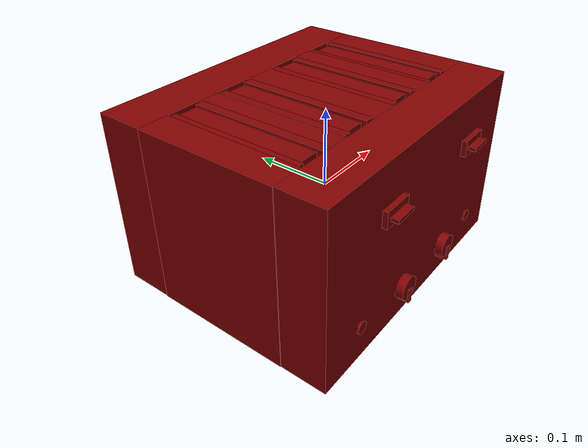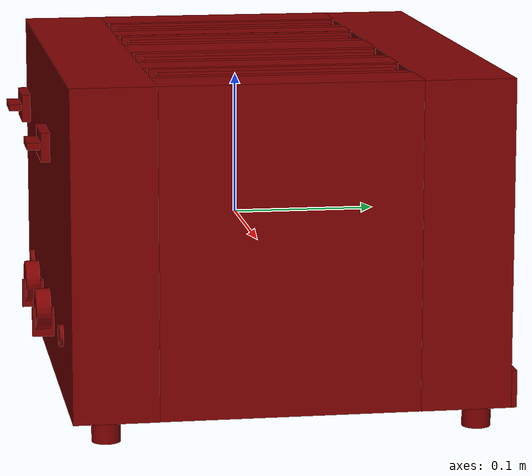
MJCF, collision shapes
<?xml version='1.0' encoding='UTF-8'?>
<mujoco model="model">
  <compiler angle="radian"/>
  <asset>
    <mesh file="visuals/Body001.obj" name="Body001_vis"/>
    <mesh file="visuals/Body002.obj" name="Body002_vis"/>
    <mesh file="visuals/Button001.obj" name="Button001_vis"/>
    <mesh file="visuals/Button002.obj" name="Button002_vis"/>
    <mesh file="visuals/Knob001.obj" name="Knob001_vis"/>
    <mesh file="visuals/Knob002.obj" name="Knob002_vis"/>
    <mesh file="visuals/Lever001.obj" name="Lever001_vis"/>
    <mesh file="visuals/Lever002.obj" name="Lever002_vis"/>
    <texture file="visuals/T_BC001.png" name="Body001_material" type="2d"/>
    <material name="Body001_material" rgba="1 1 1 1.0" texture="Body001_material" shininess="0.5" specular="2"/>
    <texture file="visuals/T_BC001.png" name="Body002_material" type="2d"/>
    <material name="Body002_material" rgba="1 1 1 1.0" texture="Body002_material" shininess="0.5" specular="0.3103448502657381"/>
    <texture file="visuals/T_BC001.png" name="Button001_material" type="2d"/>
    <material name="Button001_material" rgba="1 1 1 1.0" texture="Button001_material" shininess="0.5" specular="0.3103448502657381"/>
    <texture file="visuals/T_BC001.png" name="Button002_material" type="2d"/>
    <material name="Button002_material" rgba="1 1 1 1.0" texture="Button002_material" shininess="0.5" specular="0.3103448502657381"/>
    <texture file="visuals/T_BC001.png" name="Knob001_material" type="2d"/>
    <material name="Knob001_material" rgba="1 1 1 1.0" texture="Knob001_material" shininess="0.5" specular="0.3103448502657381"/>
    <texture file="visuals/T_BC001.png" name="Knob002_material" type="2d"/>
    <material name="Knob002_material" rgba="1 1 1 1.0" texture="Knob002_material" shininess="0.5" specular="0.3103448502657381"/>
    <texture file="visuals/T_BC001.png" name="Lever001_material" type="2d"/>
    <material name="Lever001_material" rgba="1 1 1 1.0" texture="Lever001_material" shininess="0.5" specular="0.3103448502657381"/>
    <texture file="visuals/T_BC001.png" name="Lever002_material" type="2d"/>
    <material name="Lever002_material" rgba="1 1 1 1.0" texture="Lever002_material" shininess="0.5" specular="0.3103448502657381"/>
  </asset>
  <default>
    <default class="visual">
      <geom conaffinity="0" contype="0" group="1" type="mesh"/>
    </default>
    <default class="collision">
      <geom group="0" rgba="0.5 0 0 0.5"/>
    </default>
    <default class="spawn">
      <geom group="0" rgba="1 1 1 0.5" contype="0" conaffinity="0"/>
      <site group="0" rgba="1 1 1 0.5"/>
    </default>
    <default class="region">
      <geom group="1" conaffinity="0" contype="0" rgba="0 1 0 0"/>
    </default>
  </default>
  <worldbody>
    <body>
      <body name="object">
        <geom mesh="Body001_vis" type="mesh" solimp="0.998 0.998 0.001" solref="0.001 1" density="100" friction="0.95 0.3 0.1" class="visual" material="Body001_material"/>
        <geom class="collision" type="box" pos="0.0 0.1293870359659195 0.007763856090605259" size="0.18278317153453827 0.030968448147177696 0.11197870224714279" quat="1.0 0.0 0.0 0.0"/>
        <geom class="collision" type="box" pos="0.0 -0.10653690248727798 0.007763856090605259" size="0.18278315663337708 0.028775308281183243 0.11197870224714279" quat="1.0 0.0 0.0 0.0"/>
        <geom class="collision" type="box" pos="0.162806898355484 0.010731152258813381 0.0077638570219278336" size="0.01963685266673565 0.08824531733989716 0.11198654025793076" quat="1.0 0.0 0.0 0.0"/>
        <geom class="collision" type="box" pos="-0.16372668743133545 0.010731152258813381 0.007763858884572983" size="0.01963685266673565 0.08824531733989716 0.11198627948760986" quat="1.0 0.0 0.0 0.0"/>
        <geom class="collision" type="box" pos="-0.08492938429117203 0.010731152258813381 0.0077638570219278336" size="0.013056380674242973 0.0882427841424942 0.11197137832641602" quat="1.0 0.0 0.0 0.0"/>
        <geom class="collision" type="box" pos="0.0003066202625632286 0.010731152258813381 0.007763858884572983" size="0.02036367356777191 0.08824531733989716 0.11197517067193985" quat="1.0 0.0 0.0 0.0"/>
        <geom class="collision" type="box" pos="0.08334530889987946 0.010731152258813381 0.007763856090605259" size="0.014646485447883606 0.08824531733989716 0.11197870224714279" quat="1.0 0.0 0.0 0.0"/>
        <geom class="collision" type="cylinder" pos="-0.15894222259521484 -0.11187659204006195 -0.11220763623714447" size="0.009821919724345207 0.007714869454503059" quat="1.0 0.0 0.0 0.0"/>
        <geom class="collision" type="cylinder" pos="-0.15894222259521484 0.14030589163303375 -0.11220763623714447" size="0.009821919724345207 0.007714869454503059" quat="1.0 0.0 0.0 0.0"/>
        <geom class="collision" type="cylinder" pos="0.16593624651432037 -0.11187659204006195 -0.11220763623714447" size="0.009821919724345207 0.007714869454503059" quat="1.0 0.0 0.0 0.0"/>
        <geom class="collision" type="cylinder" pos="0.16593624651432037 0.14030589163303375 -0.11220763623714447" size="0.009821919724345207 0.007714869454503059" quat="1.0 0.0 0.0 0.0"/>
        <geom class="collision" type="box" pos="-0.0664513036608696 0.010731152258813381 0.007763858884572983" size="0.004780661314725876 0.08500409126281738 0.11198525130748749" quat="1.0 0.0 0.0 0.0"/>
        <geom class="collision" type="box" pos="-0.02547631412744522 0.010731152258813381 0.0077638570219278336" size="0.005699888337403536 0.08500391989946365 0.1119849905371666" quat="1.0 0.0 0.0 0.0"/>
        <geom class="collision" type="box" pos="0.02359612286090851 0.010731152258813381 0.007763858884572983" size="0.004780661314725876 0.08500374853610992 0.1119847297668457" quat="1.0 0.0 0.0 0.0"/>
        <geom class="collision" type="box" pos="0.06495026499032974 0.010731152258813381 0.0077638570219278336" size="0.004849197342991829 0.0850035771727562 0.11198447644710541" quat="1.0 0.0 0.0 0.0"/>
        <geom class="collision" type="box" pos="0.10086341202259064 0.010731152258813381 0.0077638570219278336" size="0.003658499801531434 0.08499972522258759 0.11197595298290253" quat="1.0 0.0 0.0 0.0"/>
        <geom class="collision" type="box" pos="0.14052079617977142 0.010731152258813381 0.0077638570219278336" size="0.006151702255010605 0.08500323444604874 0.11198395490646362" quat="1.0 0.0 0.0 0.0"/>
        <geom class="collision" type="box" pos="-0.14139775931835175 0.010731152258813381 0.007763858884572983" size="0.004780661314725876 0.08500305563211441 0.11198370158672333" quat="1.0 0.0 0.0 0.0"/>
        <geom class="collision" type="box" pos="-0.10245190560817719 0.010731152258813381 0.007763856090605259" size="0.005606416147202253 0.08500288426876068 0.11197870224714279" quat="1.0 0.0 0.0 0.0"/>
        <geom class="collision" type="box" pos="0.0 0.01582089439034462 -0.09214701503515244" size="0.1800077259540558 0.14913173019886017 0.012762213125824928" quat="1.0 0.0 0.0 0.0"/>
        <body name="Body002">
          <geom mesh="Body002_vis" type="mesh" solimp="0.998 0.998 0.001" solref="0.001 1" density="100" friction="0.95 0.3 0.1" class="visual" material="Body002_material"/>
        </body>
        <body name="Button001">
          <joint axis="0.0 1.0 0.0" pos="-0.12382469326257706 -0.1366235315799713 -0.05799705535173416" limited="true" name="Button001_joint" range="0.0 0.0037" type="slide" damping="1" frictionloss="1" armature=".01" stiffness="0.05"/>
          <geom mesh="Button001_vis" type="mesh" solimp="0.998 0.998 0.001" solref="0.001 1" density="100" friction="0.95 0.3 0.1" class="visual" material="Button001_material"/>
          <geom class="collision" type="cylinder" pos="-0.12467556446790695 -0.13764098286628723 -0.05785688757896423" size="0.007437814027070999 0.0013412082334980369" quat="0.7071068286895752 0.7071067690849304 0.0 0.0"/>
        </body>
        <body name="Button002">
          <joint axis="0.0 1.0 0.0" pos="0.12132416665554047 -0.1366235315799713 -0.05799705535173416" limited="true" name="Button002_joint" range="0.0 0.0037" type="slide" damping="1" frictionloss="1" armature=".01" stiffness="0.05"/>
          <geom mesh="Button002_vis" type="mesh" solimp="0.998 0.998 0.001" solref="0.001 1" density="100" friction="0.95 0.3 0.1" class="visual" material="Button002_material"/>
          <geom class="collision" type="cylinder" pos="0.12145990878343582 -0.13738100230693817 -0.05785688757896423" size="0.007437814027070999 0.0013412082334980369" quat="0.7071068286895752 0.7071067690849304 0.0 0.0"/>
        </body>
        <body name="Knob001">
          <joint axis="0.0 1.0 0.0" pos="-0.0457763709127903 -0.14126333594322205 -0.056695666164159775" limited="true" name="Knob001_joint" range="0.0 5.235987755982989" type="hinge" damping="0.05" armature="0.001"/>
          <geom mesh="Knob001_vis" type="mesh" solimp="0.998 0.998 0.001" solref="0.001 1" density="100" friction="0.95 0.3 0.1" class="visual" material="Knob001_material"/>
          <geom class="collision" type="cylinder" pos="-0.045753952115774155 -0.14392414689064026 -0.05660382658243179" size="0.014604751951992512 0.0049477447755634785" quat="0.7071068286895752 0.7071067690849304 0.0 0.0"/>
          <geom class="collision" type="box" pos="-0.045708123594522476 -0.14346811175346375 -0.06581727415323257" size="0.0027107419446110725 0.007528138812631369 0.009760991670191288" quat="1.0 0.0 0.0 0.0"/>
        </body>
        <body name="Knob002">
          <joint axis="0.0 1.0 0.0" pos="0.04678315296769142 -0.14126333594322205 -0.056267693638801575" limited="true" name="Knob002_joint" range="0.0 5.235987755982989" type="hinge" damping="0.05" armature="0.001"/>
          <geom mesh="Knob002_vis" type="mesh" solimp="0.998 0.998 0.001" solref="0.001 1" density="100" friction="0.95 0.3 0.1" class="visual" material="Knob002_material"/>
          <geom class="collision" type="cylinder" pos="0.046773139387369156 -0.1438264548778534 -0.05629212036728859" size="0.014244599267840385 0.005085412412881851" quat="0.7071068286895752 0.7071067690849304 0.0 0.0"/>
          <geom class="collision" type="box" pos="0.04683396592736244 -0.14346811175346375 -0.06581727415323257" size="0.0027107419446110725 0.007528138812631369 0.009760991670191288" quat="1.0 0.0 0.0 0.0"/>
        </body>
        <body name="Lever001">
          <joint axis="0.0 0.0 -1.0" pos="-0.08552161604166031 -0.14344555139541626 0.06779919564723969" limited="true" name="Lever001_joint" range="0.0 0.07" type="slide" damping="1" frictionloss="1" armature=".01" stiffness="1" springref="-2"/>
          <geom mesh="Lever001_vis" type="mesh" solimp="0.998 0.998 0.001" solref="0.001 1" density="100" friction="0.95 0.3 0.1" class="visual" material="Lever001_material"/>
          <geom class="collision" type="box" pos="-0.08537087589502335 -0.1521112471818924 0.06804905831813812" size="0.014338847249746323 0.004464126192033291 0.0023683267645537853" quat="1.0 0.0 0.0 0.0" name="sideL_lever_knob"/>
          <geom class="collision" type="box" pos="-0.08537087589502335 -0.14452633261680603 0.06804905831813812" size="0.019358130171895027 0.003041111631318927 0.009927280247211456" quat="1.0 0.0 0.0 0.0"/>
          <geom class="collision" type="box" pos="-0.12215737253427505 0.011677463538944721 0.11421796679496765" size="0.01249999925494194 0.08113608509302139 0.0036970549263060093" quat="1.0 0.0 0.0 0.0" name="sideL_slotL_floor"/>
          <geom class="collision" type="box" pos="-0.046521954238414764 0.011677463538944721 0.11421796679496765" size="0.01249999925494194 0.08113604784011841 0.00369705306366086" quat="1.0 0.0 0.0 0.0" name="sideL_slotR_floor"/>
        </body>
        <body name="Lever002">
          <joint axis="0.0 0.0 -1.0" pos="0.08359898626804352 -0.14344555139541626 0.06779919564723969" limited="true" name="Lever002_joint" range="0.0 0.07" type="slide" damping="1" frictionloss="1" armature=".01" stiffness="1" springref="-2"/>
          <geom mesh="Lever002_vis" type="mesh" solimp="0.998 0.998 0.001" solref="0.001 1" density="100" friction="0.95 0.3 0.1" class="visual" material="Lever002_material"/>
          <geom class="collision" type="box" pos="0.0834248885512352 -0.14452633261680603 0.06804905831813812" size="0.019358130171895027 0.003041111631318927 0.009927313774824142" quat="1.0 0.0 0.0 0.0"/>
          <geom class="collision" type="box" pos="0.0834248885512352 -0.1521112471818924 0.06804905831813812" size="0.014338701963424683 0.004464126192033291 0.0023683267645537853" quat="1.0 0.0 0.0 0.0" name="sideR_lever_knob"/>
          <geom class="collision" type="box" pos="0.04452598839998245 0.011677463538944721 0.11421796679496765" size="0.01249999925494194 0.08113592863082886 0.0036970472428947687" quat="1.0 0.0 0.0 0.0" name="sideR_slotL_floor"/>
          <geom class="collision" type="box" pos="0.11979889869689941 0.011677463538944721 0.11421796679496765" size="0.01249999925494194 0.08113589137792587 0.0036970453802496195" quat="1.0 0.0 0.0 0.0" name="sideR_slotR_floor"/>
        </body>
        <geom class="region" name="reg_main" type="box" pos="-3.418385352560449e-09 0.010777751915156841 0.0" size="0.18204496800899506 0.14582285284996033 0.11931507289409637"/>
      </body>
    </body>
  </worldbody>
  <actuator>
    <motor name="Button001_joint_actuator" joint="Button001_joint" gear="0.5"/>
    <motor name="Button002_joint_actuator" joint="Button002_joint" gear="0.5"/>
    <motor name="Knob001_joint_actuator" joint="Knob001_joint" gear="10"/>
    <motor name="Knob002_joint_actuator" joint="Knob002_joint" gear="10"/>
    <motor name="Lever001_joint_actuator" joint="Lever001_joint" gear="10"/>
    <motor name="Lever002_joint_actuator" joint="Lever002_joint" gear="10"/>
  </actuator>
</mujoco>
